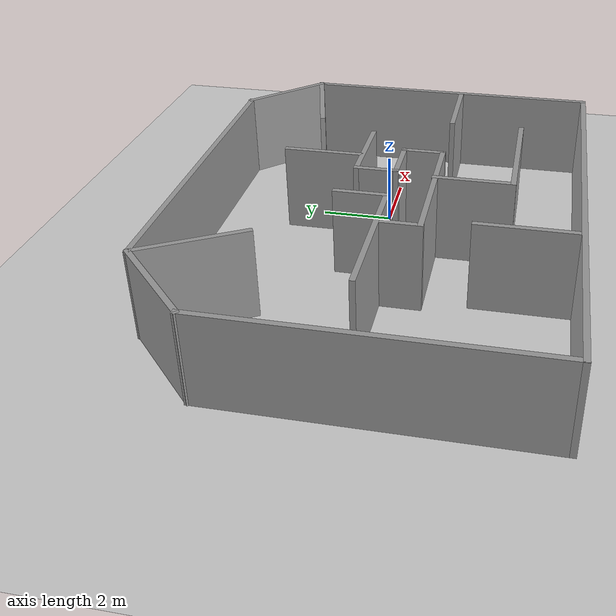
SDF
<sdf version="1.7">
 <world name="default">
  <light name="sun" type="directional">
   <cast_shadows>0</cast_shadows>
   <pose>0 0 10 0 -0 0</pose>
   <diffuse>0.8 0.8 0.8 1</diffuse>
   <specular>0.2 0.2 0.2 1</specular>
   <attenuation>
    <range>1000</range>
    <constant>0.9</constant>
    <linear>0.01</linear>
    <quadratic>0.001</quadratic>
   </attenuation>
   <direction>-0.5 0.1 -0.9</direction>
   <spot><inner_angle>0</inner_angle><outer_angle>0</outer_angle><falloff>0</falloff></spot>
  </light>
  <gravity>0 0 -9.8</gravity>
  <scene><ambient>0.4 0.4 0.4 1</ambient><background>0.7 0.7 0.7 1</background><shadows>1</shadows></scene>
  <magnetic_field>6e-06 2.3e-05 -4.2e-05</magnetic_field>
  <atmosphere type="adiabatic"/>
  <physics type="ode">
   <max_step_size>0.001</max_step_size>
   <real_time_factor>1</real_time_factor>
   <real_time_update_rate>1000</real_time_update_rate>
  </physics>
  <audio><device>default</device></audio>
  <spherical_coordinates>
   <surface_model>EARTH_WGS84</surface_model>
   <latitude_deg>0</latitude_deg>
   <longitude_deg>0</longitude_deg>
   <elevation>0</elevation>
   <heading_deg>0</heading_deg>
  </spherical_coordinates>
  <model name="New_Enevironment">
   <pose>-2.32177 -0.25756 0 0 -0 0</pose>
   <link name="Wall_48">
    <collision name="Wall_48_Collision">
     <geometry><box><size>2.75 0.15 2.5</size></box></geometry>
     <pose>0 0 1.25 0 -0 0</pose>
    </collision>
    <visual name="Wall_48_Visual">
     <pose>0 0 1.25 0 -0 0</pose>
     <geometry><box><size>2.75 0.15 2.5</size></box></geometry>
     <material>
      <script><uri>file://media/materials/scripts/gazebo.material</uri><name>Gazebo/Grey</name></script>
      <ambient>1 1 1 1</ambient>
     </material>
     <meta><layer>0</layer></meta>
    </visual>
    <pose>5.63076 4.28447 0 0 -0 -0.785398</pose>
   </link>
   <link name="Wall_49">
    <collision name="Wall_49_Collision">
     <geometry><box><size>8.75 0.15 2.5</size></box></geometry>
     <pose>0 0 1.25 0 -0 0</pose>
    </collision>
    <visual name="Wall_49_Visual">
     <pose>0 0 1.25 0 -0 0</pose>
     <geometry><box><size>8.75 0.15 2.5</size></box></geometry>
     <material>
      <script><uri>file://media/materials/scripts/gazebo.material</uri><name>Gazebo/Grey</name></script>
      <ambient>1 1 1 1</ambient>
     </material>
     <meta><layer>0</layer></meta>
    </visual>
    <pose>6.55 -0.934772 0 0 -0 -1.5708</pose>
   </link>
   <link name="Wall_50">
    <collision name="Wall_50_Collision">
     <geometry><box><size>13.25 0.15 2.5</size></box></geometry>
     <pose>0 0 1.25 0 -0 0</pose>
    </collision>
    <visual name="Wall_50_Visual">
     <pose>0 0 1.25 0 -0 0</pose>
     <geometry><box><size>13.25 0.15 2.5</size></box></geometry>
     <material>
      <script><uri>file://media/materials/scripts/gazebo.material</uri><name>Gazebo/Grey</name></script>
      <ambient>1 1 1 1</ambient>
     </material>
     <meta><layer>0</layer></meta>
    </visual>
    <pose>-0 -5.23477 0 0 -0 3.14159</pose>
   </link>
   <link name="Wall_51">
    <collision name="Wall_51_Collision">
     <geometry><box><size>8.5 0.15 2.5</size></box></geometry>
     <pose>0 0 1.25 0 -0 0</pose>
    </collision>
    <visual name="Wall_51_Visual">
     <pose>0 0 1.25 0 -0 0</pose>
     <geometry><box><size>8.5 0.15 2.5</size></box></geometry>
     <material>
      <script><uri>file://media/materials/scripts/gazebo.material</uri><name>Gazebo/Grey</name></script>
      <ambient>1 1 1 1</ambient>
     </material>
     <meta><layer>0</layer></meta>
    </visual>
    <pose>-6.55 -1.05977 0 0 -0 1.5708</pose>
   </link>
   <link name="Wall_52">
    <collision name="Wall_52_Collision">
     <geometry><box><size>3 0.15 2.5</size></box></geometry>
     <pose>0 0 1.25 0 -0 0</pose>
    </collision>
    <visual name="Wall_52_Visual">
     <pose>0 0 1.25 0 -0 0</pose>
     <geometry><box><size>3 0.15 2.5</size></box></geometry>
     <material>
      <script><uri>file://media/materials/scripts/gazebo.material</uri><name>Gazebo/Grey</name></script>
      <ambient>1 1 1 1</ambient>
     </material>
     <meta><layer>0</layer></meta>
    </visual>
    <pose>-5.54237 4.12286 0 0 -0 0.785398</pose>
   </link>
   <link name="Wall_53">
    <collision name="Wall_53_Collision">
     <geometry><box><size>9.39656 0.15 2.5</size></box></geometry>
     <pose>0 0 1.25 0 -0 0</pose>
    </collision>
    <visual name="Wall_53_Visual">
     <pose>0 0 1.25 0 -0 0</pose>
     <geometry><box><size>9.39656 0.15 2.5</size></box></geometry>
     <material>
      <script><uri>file://media/materials/scripts/gazebo.material</uri><name>Gazebo/Grey</name></script>
      <ambient>1 1 1 1</ambient>
     </material>
     <meta><layer>0</layer></meta>
    </visual>
    <pose>0.088388 5.16709 0 0 -0 0.007919</pose>
   </link>
   <link name="Wall_55">
    <collision name="Wall_55_Collision">
     <geometry><box><size>1.5 0.15 2.5</size></box></geometry>
     <pose>0 0 1.25 0 -0 0</pose>
    </collision>
    <visual name="Wall_55_Visual">
     <pose>0 0 1.25 0 -0 0</pose>
     <geometry><box><size>1.5 0.15 2.5</size></box></geometry>
     <material>
      <script><uri>file://media/materials/scripts/gazebo.material</uri><name>Gazebo/Grey</name></script>
      <ambient>1 1 1 1</ambient>
     </material>
     <meta><layer>0</layer></meta>
    </visual>
    <pose>-0.741186 0.447969 0 0 -0 -1.5708</pose>
   </link>
   <link name="Wall_57">
    <collision name="Wall_57_Collision">
     <geometry><box><size>1.5 0.15 2.5</size></box></geometry>
     <pose>0 0 1.25 0 -0 0</pose>
    </collision>
    <visual name="Wall_57_Visual">
     <pose>0 0 1.25 0 -0 0</pose>
     <geometry><box><size>1.5 0.15 2.5</size></box></geometry>
     <material>
      <script><uri>file://media/materials/scripts/gazebo.material</uri><name>Gazebo/Grey</name></script>
      <ambient>1 1 1 1</ambient>
     </material>
     <meta><layer>0</layer></meta>
    </visual>
    <pose>-1.41619 -0.227031 0 0 -0 3.14159</pose>
   </link>
   <link name="Wall_58">
    <collision name="Wall_58_Collision">
     <geometry><box><size>1.25 0.15 2.5</size></box></geometry>
     <pose>0 0 1.25 0 -0 0</pose>
    </collision>
    <visual name="Wall_58_Visual">
     <pose>0 0 1.25 0 -0 0</pose>
     <geometry><box><size>1.25 0.15 2.5</size></box></geometry>
     <material>
      <script><uri>file://media/materials/scripts/gazebo.material</uri><name>Gazebo/Grey</name></script>
      <ambient>1 1 1 1</ambient>
     </material>
     <meta><layer>0</layer></meta>
    </visual>
    <pose>-2.09119 -0.777031 0 0 -0 -1.5708</pose>
   </link>
   <link name="Wall_59">
    <collision name="Wall_59_Collision">
     <geometry><box><size>4.25 0.15 2.5</size></box></geometry>
     <pose>0 0 1.25 0 -0 0</pose>
    </collision>
    <visual name="Wall_59_Visual">
     <pose>0 0 1.25 0 -0 0</pose>
     <geometry><box><size>4.25 0.15 2.5</size></box></geometry>
     <material>
      <script><uri>file://media/materials/scripts/gazebo.material</uri><name>Gazebo/Grey</name></script>
      <ambient>1 1 1 1</ambient>
     </material>
     <meta><layer>0</layer></meta>
    </visual>
    <pose>-0.041186 -1.32703 0 0 -0 0</pose>
   </link>
   <link name="Wall_60">
    <collision name="Wall_60_Collision">
     <geometry><box><size>1.25 0.15 2.5</size></box></geometry>
     <pose>0 0 1.25 0 -0 0</pose>
    </collision>
    <visual name="Wall_60_Visual">
     <pose>0 0 1.25 0 -0 0</pose>
     <geometry><box><size>1.25 0.15 2.5</size></box></geometry>
     <material>
      <script><uri>file://media/materials/scripts/gazebo.material</uri><name>Gazebo/Grey</name></script>
      <ambient>1 1 1 1</ambient>
     </material>
     <meta><layer>0</layer></meta>
    </visual>
    <pose>2.00881 -0.777031 0 0 -0 1.5708</pose>
   </link>
   <link name="Wall_61">
    <collision name="Wall_61_Collision">
     <geometry><box><size>1.5 0.15 2.5</size></box></geometry>
     <pose>0 0 1.25 0 -0 0</pose>
    </collision>
    <visual name="Wall_61_Visual">
     <pose>0 0 1.25 0 -0 0</pose>
     <geometry><box><size>1.5 0.15 2.5</size></box></geometry>
     <material>
      <script><uri>file://media/materials/scripts/gazebo.material</uri><name>Gazebo/Grey</name></script>
      <ambient>1 1 1 1</ambient>
     </material>
     <meta><layer>0</layer></meta>
    </visual>
    <pose>1.33381 -0.227031 0 0 -0 3.14159</pose>
   </link>
   <link name="Wall_62">
    <collision name="Wall_62_Collision">
     <geometry><box><size>1.25 0.15 2.5</size></box></geometry>
     <pose>0 0 1.25 0 -0 0</pose>
    </collision>
    <visual name="Wall_62_Visual">
     <pose>0 0 1.25 0 -0 0</pose>
     <geometry><box><size>1.25 0.15 2.5</size></box></geometry>
     <material>
      <script><uri>file://media/materials/scripts/gazebo.material</uri><name>Gazebo/Grey</name></script>
      <ambient>1 1 1 1</ambient>
     </material>
     <meta><layer>0</layer></meta>
    </visual>
    <pose>0.658814 0.322969 0 0 -0 1.5708</pose>
   </link>
   <link name="Wall_63">
    <collision name="Wall_63_Collision">
     <geometry><box><size>2.5 0.15 2.5</size></box></geometry>
     <pose>0 0 1.25 0 -0 0</pose>
    </collision>
    <visual name="Wall_63_Visual">
     <pose>0 0 1.25 0 -0 0</pose>
     <geometry><box><size>2.5 0.15 2.5</size></box></geometry>
     <material>
      <script><uri>file://media/materials/scripts/gazebo.material</uri><name>Gazebo/Grey</name></script>
      <ambient>1 1 1 1</ambient>
     </material>
     <meta><layer>0</layer></meta>
    </visual>
    <pose>1.83381 0.872969 0 0 -0 0</pose>
   </link>
   <link name="Wall_65">
    <collision name="Wall_65_Collision">
     <geometry><box><size>3 0.15 2.5</size></box></geometry>
     <pose>0 0 1.25 0 -0 0</pose>
    </collision>
    <visual name="Wall_65_Visual">
     <pose>0 0 1.25 0 -0 0</pose>
     <geometry><box><size>3 0.15 2.5</size></box></geometry>
     <material>
      <script><uri>file://media/materials/scripts/gazebo.material</uri><name>Gazebo/Grey</name></script>
      <ambient>1 1 1 1</ambient>
     </material>
     <meta><layer>0</layer></meta>
    </visual>
    <pose>-3.82225 3.8964 0 0 -0 -1.0472</pose>
   </link>
   <link name="Wall_71">
    <collision name="Wall_71_Collision">
     <geometry><box><size>2.25 0.15 2.5</size></box></geometry>
     <pose>0 0 1.25 0 -0 0</pose>
    </collision>
    <visual name="Wall_71_Visual">
     <pose>0 0 1.25 0 -0 0</pose>
     <geometry><box><size>2.25 0.15 2.5</size></box></geometry>
     <material>
      <script><uri>file://media/materials/scripts/gazebo.material</uri><name>Gazebo/Grey</name></script>
      <ambient>1 1 1 1</ambient>
     </material>
     <meta><layer>0</layer></meta>
    </visual>
    <pose>0.490071 -2.35437 0 0 -0 -1.5708</pose>
   </link>
   <link name="Wall_77">
    <collision name="Wall_77_Collision">
     <geometry><box><size>3 0.15 2.5</size></box></geometry>
     <pose>0 0 1.25 0 -0 0</pose>
    </collision>
    <visual name="Wall_77_Visual">
     <pose>0 0 1.25 0 -0 0</pose>
     <geometry><box><size>3 0.15 2.5</size></box></geometry>
     <material>
      <script><uri>file://media/materials/scripts/gazebo.material</uri><name>Gazebo/Grey</name></script>
      <ambient>1 1 1 1</ambient>
     </material>
     <meta><layer>0</layer></meta>
    </visual>
    <pose>5.17356 2.99641 0 0 -0 -2.87979</pose>
   </link>
   <link name="Wall_80">
    <collision name="Wall_80_Collision">
     <geometry><box><size>2.25 0.15 2.5</size></box></geometry>
     <pose>0 0 1.25 0 -0 0</pose>
    </collision>
    <visual name="Wall_80_Visual">
     <pose>0 0 1.25 0 -0 0</pose>
     <geometry><box><size>2.25 0.15 2.5</size></box></geometry>
     <material>
      <script><uri>file://media/materials/scripts/gazebo.material</uri><name>Gazebo/Grey</name></script>
      <ambient>1 1 1 1</ambient>
     </material>
     <meta><layer>0</layer></meta>
    </visual>
    <pose>1.47508 1.99708 0 0 -0 1.5708</pose>
   </link>
   <link name="Wall_82">
    <collision name="Wall_82_Collision">
     <geometry><box><size>3.75 0.15 2.5</size></box></geometry>
     <pose>0 0 1.25 0 -0 0</pose>
    </collision>
    <visual name="Wall_82_Visual">
     <pose>0 0 1.25 0 -0 0</pose>
     <geometry><box><size>3.75 0.15 2.5</size></box></geometry>
     <material>
      <script><uri>file://media/materials/scripts/gazebo.material</uri><name>Gazebo/Grey</name></script>
      <ambient>1 1 1 1</ambient>
     </material>
     <meta><layer>0</layer></meta>
    </visual>
    <pose>2.29007 -3.40436 0 0 -0 0</pose>
   </link>
   <link name="Wall_84">
    <collision name="Wall_84_Collision">
     <geometry><box><size>2.5 0.15 2.5</size></box></geometry>
     <pose>0 0 1.25 0 -0 0</pose>
    </collision>
    <visual name="Wall_84_Visual">
     <pose>0 0 1.25 0 -0 0</pose>
     <geometry><box><size>2.5 0.15 2.5</size></box></geometry>
     <material>
      <script><uri>file://media/materials/scripts/gazebo.material</uri><name>Gazebo/Grey</name></script>
      <ambient>1 1 1 1</ambient>
     </material>
     <meta><layer>0</layer></meta>
    </visual>
    <pose>5.33064 -1.33954 0 0 -0 3.14159</pose>
   </link>
   <link name="Wall_86">
    <collision name="Wall_86_Collision">
     <geometry><box><size>2.75 0.15 2.5</size></box></geometry>
     <pose>0 0 1.25 0 -0 0</pose>
    </collision>
    <visual name="Wall_86_Visual">
     <pose>0 0 1.25 0 -0 0</pose>
     <geometry><box><size>2.75 0.15 2.5</size></box></geometry>
     <material>
      <script><uri>file://media/materials/scripts/gazebo.material</uri><name>Gazebo/Grey</name></script>
      <ambient>1 1 1 1</ambient>
     </material>
     <meta><layer>0</layer></meta>
    </visual>
    <pose>-1.76137 -3.90921 0 0 -0 1.5708</pose>
   </link>
   <link name="Wall_91">
    <collision name="Wall_91_Collision">
     <geometry><box><size>2.75 0.15 2.5</size></box></geometry>
     <pose>0 0 1.25 0 -0 0</pose>
    </collision>
    <visual name="Wall_91_Visual">
     <pose>0 0 1.25 0 -0 0</pose>
     <geometry><box><size>2.75 0.15 2.5</size></box></geometry>
     <material>
      <script><uri>file://media/materials/scripts/gazebo.material</uri><name>Gazebo/Grey</name></script>
      <ambient>1 1 1 1</ambient>
     </material>
     <meta><layer>0</layer></meta>
    </visual>
    <pose>-3.39119 -0.227031 0 0 -0 3.14159</pose>
   </link>
   <static>1</static>
  </model>
  <model name="ground_plane">
   <static>1</static>
   <link name="link">
    <collision name="collision">
     <geometry><plane><normal>0 0 1</normal><size>100 100</size></plane></geometry>
     <surface>
      <contact><collide_bitmask>65535</collide_bitmask></contact>
      <friction><ode><mu>100</mu><mu2>50</mu2></ode></friction>
     </surface>
    </collision>
    <visual name="visual">
     <cast_shadows>0</cast_shadows>
     <geometry><plane><normal>0 0 1</normal><size>100 100</size></plane></geometry>
     <material>
      <script><uri>file://media/materials/scripts/gazebo.material</uri><name>Gazebo/Grey</name></script>
     </material>
    </visual>
   </link>
   <pose>1.44804 -7.48778 0 0 -0 0</pose>
  </model>
 </world>
</sdf>
